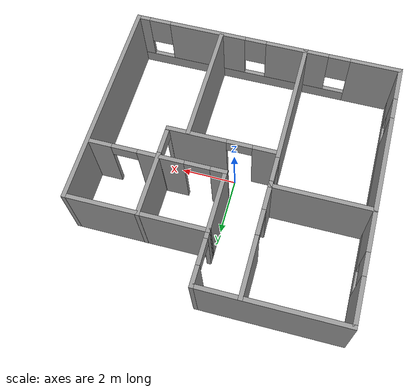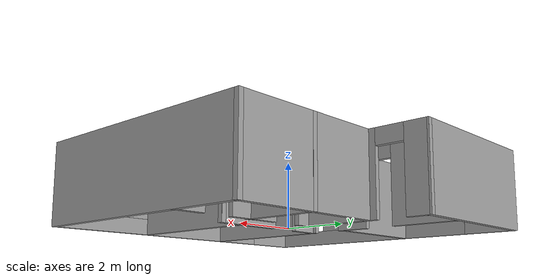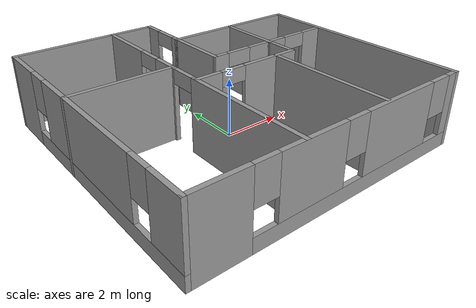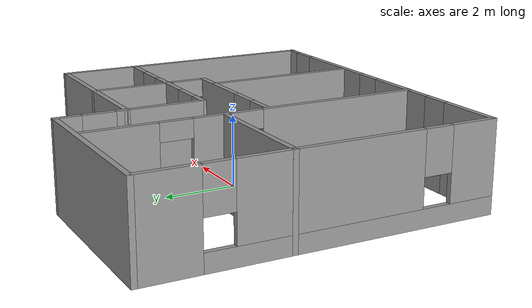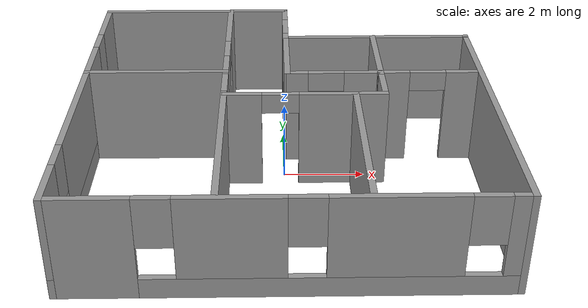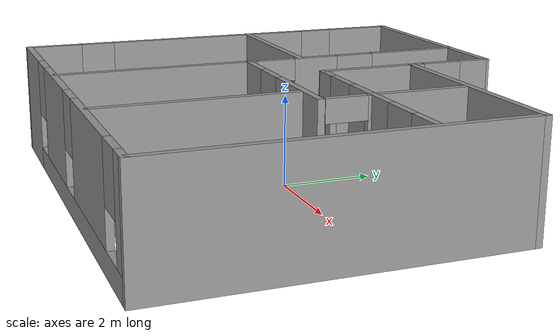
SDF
<?xml version='1.0'?>
<sdf version='1.7'>
  <model name='thelastone'>
    <pose>-0.001793 0.096026 0 0 -0 0</pose>
    <link name='Wall_0'>
      <pose>-4.92479 -0.050002 0 0 -0 -1.5708</pose>
      <visual name='Wall_0_Visual_0'>
        <pose>-3.96262 0 1.25 0 -0 0</pose>
        <geometry>
          <box>
            <size>1.57475 0.15 2.5</size>
          </box>
        </geometry>
        <material>
          <script>
            <uri>file://media/materials/scripts/gazebo.material</uri>
            <name>Gazebo/Grey</name>
          </script>
          <ambient>1 1 1 1</ambient>
        </material>
        <meta>
          <layer>0</layer>
        </meta>
      </visual>
      <collision name='Wall_0_Collision_0'>
        <geometry>
          <box>
            <size>1.57475 0.15 2.5</size>
          </box>
        </geometry>
        <pose>-3.96262 0 1.25 0 -0 0</pose>
      </collision>
      <visual name='Wall_0_Visual_1'>
        <pose>0.787376 0 0.25 0 -0 0</pose>
        <geometry>
          <box>
            <size>7.92525 0.15 0.5</size>
          </box>
        </geometry>
        <material>
          <script>
            <uri>file://media/materials/scripts/gazebo.material</uri>
            <name>Gazebo/Grey</name>
          </script>
          <ambient>1 1 1 1</ambient>
        </material>
        <meta>
          <layer>0</layer>
        </meta>
      </visual>
      <collision name='Wall_0_Collision_1'>
        <geometry>
          <box>
            <size>7.92525 0.15 0.5</size>
          </box>
        </geometry>
        <pose>0.787376 0 0.25 0 -0 0</pose>
      </collision>
      <visual name='Wall_0_Visual_2'>
        <pose>0.127644 0 1.5 0 -0 0</pose>
        <geometry>
          <box>
            <size>5.00578 0.15 2</size>
          </box>
        </geometry>
        <material>
          <script>
            <uri>file://media/materials/scripts/gazebo.material</uri>
            <name>Gazebo/Grey</name>
          </script>
          <ambient>1 1 1 1</ambient>
        </material>
        <meta>
          <layer>0</layer>
        </meta>
      </visual>
      <collision name='Wall_0_Collision_2'>
        <geometry>
          <box>
            <size>5.00578 0.15 2</size>
          </box>
        </geometry>
        <pose>0.127644 0 1.5 0 -0 0</pose>
      </collision>
      <visual name='Wall_0_Visual_3'>
        <pose>4.09027 0 1.5 0 -0 0</pose>
        <geometry>
          <box>
            <size>1.31947 0.15 2</size>
          </box>
        </geometry>
        <material>
          <script>
            <uri>file://media/materials/scripts/gazebo.material</uri>
            <name>Gazebo/Grey</name>
          </script>
          <ambient>1 1 1 1</ambient>
        </material>
        <meta>
          <layer>0</layer>
        </meta>
      </visual>
      <collision name='Wall_0_Collision_3'>
        <geometry>
          <box>
            <size>1.31947 0.15 2</size>
          </box>
        </geometry>
        <pose>4.09027 0 1.5 0 -0 0</pose>
      </collision>
      <visual name='Wall_0_Visual_4'>
        <pose>-2.77525 0 1.9 0 -0 0</pose>
        <geometry>
          <box>
            <size>0.8 0.15 1.2</size>
          </box>
        </geometry>
        <material>
          <script>
            <uri>file://media/materials/scripts/gazebo.material</uri>
            <name>Gazebo/Grey</name>
          </script>
          <ambient>1 1 1 1</ambient>
        </material>
        <meta>
          <layer>0</layer>
        </meta>
      </visual>
      <collision name='Wall_0_Collision_4'>
        <geometry>
          <box>
            <size>0.8 0.15 1.2</size>
          </box>
        </geometry>
        <pose>-2.77525 0 1.9 0 -0 0</pose>
      </collision>
      <visual name='Wall_0_Visual_5'>
        <pose>3.03053 0 1.9 0 -0 0</pose>
        <geometry>
          <box>
            <size>0.8 0.15 1.2</size>
          </box>
        </geometry>
        <material>
          <script>
            <uri>file://media/materials/scripts/gazebo.material</uri>
            <name>Gazebo/Grey</name>
          </script>
          <ambient>1 1 1 1</ambient>
        </material>
        <meta>
          <layer>0</layer>
        </meta>
      </visual>
      <collision name='Wall_0_Collision_5'>
        <geometry>
          <box>
            <size>0.8 0.15 1.2</size>
          </box>
        </geometry>
        <pose>3.03053 0 1.9 0 -0 0</pose>
      </collision>
    </link>
    <link name='Wall_1'>
      <pose>0.000206 -4.725 0 0 -0 0</pose>
      <visual name='Wall_1_Visual_0'>
        <pose>-4.05937 0 1.25 0 -0 0</pose>
        <geometry>
          <box>
            <size>1.88126 0.15 2.5</size>
          </box>
        </geometry>
        <material>
          <script>
            <uri>file://media/materials/scripts/gazebo.material</uri>
            <name>Gazebo/Grey</name>
          </script>
          <ambient>1 1 1 1</ambient>
        </material>
        <meta>
          <layer>0</layer>
        </meta>
      </visual>
      <collision name='Wall_1_Collision_0'>
        <geometry>
          <box>
            <size>1.88126 0.15 2.5</size>
          </box>
        </geometry>
        <pose>-4.05937 0 1.25 0 -0 0</pose>
      </collision>
      <visual name='Wall_1_Visual_1'>
        <pose>0.940628 0 0.25 0 -0 0</pose>
        <geometry>
          <box>
            <size>8.11874 0.15 0.5</size>
          </box>
        </geometry>
        <material>
          <script>
            <uri>file://media/materials/scripts/gazebo.material</uri>
            <name>Gazebo/Grey</name>
          </script>
          <ambient>1 1 1 1</ambient>
        </material>
        <meta>
          <layer>0</layer>
        </meta>
      </visual>
      <collision name='Wall_1_Collision_1'>
        <geometry>
          <box>
            <size>8.11874 0.15 0.5</size>
          </box>
        </geometry>
        <pose>0.940628 0 0.25 0 -0 0</pose>
      </collision>
      <visual name='Wall_1_Visual_2'>
        <pose>-1.15743 0 1.5 0 -0 0</pose>
        <geometry>
          <box>
            <size>2.32263 0.15 2</size>
          </box>
        </geometry>
        <material>
          <script>
            <uri>file://media/materials/scripts/gazebo.material</uri>
            <name>Gazebo/Grey</name>
          </script>
          <ambient>1 1 1 1</ambient>
        </material>
        <meta>
          <layer>0</layer>
        </meta>
      </visual>
      <collision name='Wall_1_Collision_2'>
        <geometry>
          <box>
            <size>2.32263 0.15 2</size>
          </box>
        </geometry>
        <pose>-1.15743 0 1.5 0 -0 0</pose>
      </collision>
      <visual name='Wall_1_Visual_3'>
        <pose>2.24277 0 1.5 0 -0 0</pose>
        <geometry>
          <box>
            <size>2.87777 0.15 2</size>
          </box>
        </geometry>
        <material>
          <script>
            <uri>file://media/materials/scripts/gazebo.material</uri>
            <name>Gazebo/Grey</name>
          </script>
          <ambient>1 1 1 1</ambient>
        </material>
        <meta>
          <layer>0</layer>
        </meta>
      </visual>
      <collision name='Wall_1_Collision_3'>
        <geometry>
          <box>
            <size>2.87777 0.15 2</size>
          </box>
        </geometry>
        <pose>2.24277 0 1.5 0 -0 0</pose>
      </collision>
      <visual name='Wall_1_Visual_4'>
        <pose>4.74083 0 1.5 0 -0 0</pose>
        <geometry>
          <box>
            <size>0.518345 0.15 2</size>
          </box>
        </geometry>
        <material>
          <script>
            <uri>file://media/materials/scripts/gazebo.material</uri>
            <name>Gazebo/Grey</name>
          </script>
          <ambient>1 1 1 1</ambient>
        </material>
        <meta>
          <layer>0</layer>
        </meta>
      </visual>
      <collision name='Wall_1_Collision_4'>
        <geometry>
          <box>
            <size>0.518345 0.15 2</size>
          </box>
        </geometry>
        <pose>4.74083 0 1.5 0 -0 0</pose>
      </collision>
      <visual name='Wall_1_Visual_5'>
        <pose>-2.71874 0 1.9 0 -0 0</pose>
        <geometry>
          <box>
            <size>0.8 0.15 1.2</size>
          </box>
        </geometry>
        <material>
          <script>
            <uri>file://media/materials/scripts/gazebo.material</uri>
            <name>Gazebo/Grey</name>
          </script>
          <ambient>1 1 1 1</ambient>
        </material>
        <meta>
          <layer>0</layer>
        </meta>
      </visual>
      <collision name='Wall_1_Collision_5'>
        <geometry>
          <box>
            <size>0.8 0.15 1.2</size>
          </box>
        </geometry>
        <pose>-2.71874 0 1.9 0 -0 0</pose>
      </collision>
      <visual name='Wall_1_Visual_6'>
        <pose>0.403889 0 1.9 0 -0 0</pose>
        <geometry>
          <box>
            <size>0.8 0.15 1.2</size>
          </box>
        </geometry>
        <material>
          <script>
            <uri>file://media/materials/scripts/gazebo.material</uri>
            <name>Gazebo/Grey</name>
          </script>
          <ambient>1 1 1 1</ambient>
        </material>
        <meta>
          <layer>0</layer>
        </meta>
      </visual>
      <collision name='Wall_1_Collision_6'>
        <geometry>
          <box>
            <size>0.8 0.15 1.2</size>
          </box>
        </geometry>
        <pose>0.403889 0 1.9 0 -0 0</pose>
      </collision>
      <visual name='Wall_1_Visual_7'>
        <pose>4.08165 0 1.9 0 -0 0</pose>
        <geometry>
          <box>
            <size>0.8 0.15 1.2</size>
          </box>
        </geometry>
        <material>
          <script>
            <uri>file://media/materials/scripts/gazebo.material</uri>
            <name>Gazebo/Grey</name>
          </script>
          <ambient>1 1 1 1</ambient>
        </material>
        <meta>
          <layer>0</layer>
        </meta>
      </visual>
      <collision name='Wall_1_Collision_7'>
        <geometry>
          <box>
            <size>0.8 0.15 1.2</size>
          </box>
        </geometry>
        <pose>4.08165 0 1.9 0 -0 0</pose>
      </collision>
    </link>
    <link name='Wall_11'>
      <collision name='Wall_11_Collision'>
        <geometry>
          <box>
            <size>2.27277 0.15 2.5</size>
          </box>
        </geometry>
        <pose>0 0 1.25 0 -0 0</pose>
      </collision>
      <visual name='Wall_11_Visual'>
        <pose>0 0 1.25 0 -0 0</pose>
        <geometry>
          <box>
            <size>2.27277 0.15 2.5</size>
          </box>
        </geometry>
        <material>
          <script>
            <uri>file://media/materials/scripts/gazebo.material</uri>
            <name>Gazebo/Grey</name>
          </script>
          <ambient>1 1 1 1</ambient>
        </material>
        <meta>
          <layer>0</layer>
        </meta>
      </visual>
      <pose>0.0795 1.81349 0 0 -0 1.57484</pose>
    </link>
    <link name='Wall_13'>
      <pose>1.24079 0.751974 0 0 -0 0</pose>
      <visual name='Wall_13_Visual_0'>
        <pose>-0.93552 0 1.25 0 -0 0</pose>
        <geometry>
          <box>
            <size>0.592959 0.15 2.5</size>
          </box>
        </geometry>
        <material>
          <script>
            <uri>file://media/materials/scripts/gazebo.material</uri>
            <name>Gazebo/Grey</name>
          </script>
          <ambient>1 1 1 1</ambient>
        </material>
        <meta>
          <layer>0</layer>
        </meta>
      </visual>
      <collision name='Wall_13_Collision_0'>
        <geometry>
          <box>
            <size>0.592959 0.15 2.5</size>
          </box>
        </geometry>
        <pose>-0.93552 0 1.25 0 -0 0</pose>
      </collision>
      <visual name='Wall_13_Visual_1'>
        <pose>0.74648 0 1.25 0 -0 0</pose>
        <geometry>
          <box>
            <size>0.971041 0.15 2.5</size>
          </box>
        </geometry>
        <material>
          <script>
            <uri>file://media/materials/scripts/gazebo.material</uri>
            <name>Gazebo/Grey</name>
          </script>
          <ambient>1 1 1 1</ambient>
        </material>
        <meta>
          <layer>0</layer>
        </meta>
      </visual>
      <collision name='Wall_13_Collision_1'>
        <geometry>
          <box>
            <size>0.971041 0.15 2.5</size>
          </box>
        </geometry>
        <pose>0.74648 0 1.25 0 -0 0</pose>
      </collision>
      <visual name='Wall_13_Visual_2'>
        <pose>-0.189041 0 2.25 0 -0 0</pose>
        <geometry>
          <box>
            <size>0.9 0.15 0.5</size>
          </box>
        </geometry>
        <material>
          <script>
            <uri>file://media/materials/scripts/gazebo.material</uri>
            <name>Gazebo/Grey</name>
          </script>
          <ambient>1 1 1 1</ambient>
        </material>
        <meta>
          <layer>0</layer>
        </meta>
      </visual>
      <collision name='Wall_13_Collision_2'>
        <geometry>
          <box>
            <size>0.9 0.15 0.5</size>
          </box>
        </geometry>
        <pose>-0.189041 0 2.25 0 -0 0</pose>
      </collision>
    </link>
    <link name='Wall_15'>
      <pose>2.41779 1.32997 0 0 -0 -1.5708</pose>
      <visual name='Wall_15_Visual_0'>
        <pose>-0.451387 0 1.25 0 -0 0</pose>
        <geometry>
          <box>
            <size>2.34723 0.15 2.5</size>
          </box>
        </geometry>
        <material>
          <script>
            <uri>file://media/materials/scripts/gazebo.material</uri>
            <name>Gazebo/Grey</name>
          </script>
          <ambient>1 1 1 1</ambient>
        </material>
        <meta>
          <layer>0</layer>
        </meta>
      </visual>
      <collision name='Wall_15_Collision_0'>
        <geometry>
          <box>
            <size>2.34723 0.15 2.5</size>
          </box>
        </geometry>
        <pose>-0.451387 0 1.25 0 -0 0</pose>
      </collision>
      <visual name='Wall_15_Visual_1'>
        <pose>1.62361 0 1.25 0 -0 0</pose>
        <geometry>
          <box>
            <size>0.002774 0.15 2.5</size>
          </box>
        </geometry>
        <material>
          <script>
            <uri>file://media/materials/scripts/gazebo.material</uri>
            <name>Gazebo/Grey</name>
          </script>
          <ambient>1 1 1 1</ambient>
        </material>
        <meta>
          <layer>0</layer>
        </meta>
      </visual>
      <collision name='Wall_15_Collision_1'>
        <geometry>
          <box>
            <size>0.002774 0.15 2.5</size>
          </box>
        </geometry>
        <pose>1.62361 0 1.25 0 -0 0</pose>
      </collision>
      <visual name='Wall_15_Visual_2'>
        <pose>1.17223 0 2.25 0 -0 0</pose>
        <geometry>
          <box>
            <size>0.9 0.15 0.5</size>
          </box>
        </geometry>
        <material>
          <script>
            <uri>file://media/materials/scripts/gazebo.material</uri>
            <name>Gazebo/Grey</name>
          </script>
          <ambient>1 1 1 1</ambient>
        </material>
        <meta>
          <layer>0</layer>
        </meta>
      </visual>
      <collision name='Wall_15_Collision_2'>
        <geometry>
          <box>
            <size>0.9 0.15 0.5</size>
          </box>
        </geometry>
        <pose>1.17223 0 2.25 0 -0 0</pose>
      </collision>
    </link>
    <link name='Wall_17'>
      <pose>0.492793 -0.376026 0 0 -0 0</pose>
      <visual name='Wall_17_Visual_0'>
        <pose>-1.52379 0 1.25 0 -0 0</pose>
        <geometry>
          <box>
            <size>0.952429 0.15 2.5</size>
          </box>
        </geometry>
        <material>
          <script>
            <uri>file://media/materials/scripts/gazebo.material</uri>
            <name>Gazebo/Grey</name>
          </script>
          <ambient>1 1 1 1</ambient>
        </material>
        <meta>
          <layer>0</layer>
        </meta>
      </visual>
      <collision name='Wall_17_Collision_0'>
        <geometry>
          <box>
            <size>0.952429 0.15 2.5</size>
          </box>
        </geometry>
        <pose>-1.52379 0 1.25 0 -0 0</pose>
      </collision>
      <visual name='Wall_17_Visual_1'>
        <pose>0.926214 0 1.25 0 -0 0</pose>
        <geometry>
          <box>
            <size>2.14757 0.15 2.5</size>
          </box>
        </geometry>
        <material>
          <script>
            <uri>file://media/materials/scripts/gazebo.material</uri>
            <name>Gazebo/Grey</name>
          </script>
          <ambient>1 1 1 1</ambient>
        </material>
        <meta>
          <layer>0</layer>
        </meta>
      </visual>
      <collision name='Wall_17_Collision_1'>
        <geometry>
          <box>
            <size>2.14757 0.15 2.5</size>
          </box>
        </geometry>
        <pose>0.926214 0 1.25 0 -0 0</pose>
      </collision>
      <visual name='Wall_17_Visual_2'>
        <pose>-0.597571 0 2.25 0 -0 0</pose>
        <geometry>
          <box>
            <size>0.9 0.15 0.5</size>
          </box>
        </geometry>
        <material>
          <script>
            <uri>file://media/materials/scripts/gazebo.material</uri>
            <name>Gazebo/Grey</name>
          </script>
          <ambient>1 1 1 1</ambient>
        </material>
        <meta>
          <layer>0</layer>
        </meta>
      </visual>
      <collision name='Wall_17_Collision_2'>
        <geometry>
          <box>
            <size>0.9 0.15 0.5</size>
          </box>
        </geometry>
        <pose>-0.597571 0 2.25 0 -0 0</pose>
      </collision>
    </link>
    <link name='Wall_19'>
      <collision name='Wall_19_Collision'>
        <geometry>
          <box>
            <size>4.39713 0.15 2.5</size>
          </box>
        </geometry>
        <pose>0 0 1.25 0 -0 0</pose>
      </collision>
      <visual name='Wall_19_Visual'>
        <pose>0 0 1.25 0 -0 0</pose>
        <geometry>
          <box>
            <size>4.39713 0.15 2.5</size>
          </box>
        </geometry>
        <material>
          <script>
            <uri>file://media/materials/scripts/gazebo.material</uri>
            <name>Gazebo/Grey</name>
          </script>
          <ambient>1 1 1 1</ambient>
        </material>
        <meta>
          <layer>0</layer>
        </meta>
      </visual>
      <pose>1.70579 -2.51153 0 0 -0 -1.5708</pose>
    </link>
    <link name='Wall_2'>
      <collision name='Wall_2_Collision'>
        <geometry>
          <box>
            <size>7.75 0.15 2.5</size>
          </box>
        </geometry>
        <pose>0 0 1.25 0 -0 0</pose>
      </collision>
      <visual name='Wall_2_Visual'>
        <pose>0 0 1.25 0 -0 0</pose>
        <geometry>
          <box>
            <size>7.75 0.15 2.5</size>
          </box>
        </geometry>
        <material>
          <script>
            <uri>file://media/materials/scripts/gazebo.material</uri>
            <name>Gazebo/Grey</name>
          </script>
          <ambient>1 1 1 1</ambient>
        </material>
        <meta>
          <layer>0</layer>
        </meta>
      </visual>
      <pose>4.92521 -0.925002 0 0 -0 1.5708</pose>
    </link>
    <link name='Wall_21'>
      <pose>3.66129 0.751974 0 0 -0 0</pose>
      <visual name='Wall_21_Visual_0'>
        <pose>-0.926837 0 1.25 0 -0 0</pose>
        <geometry>
          <box>
            <size>0.823326 0.15 2.5</size>
          </box>
        </geometry>
        <material>
          <script>
            <uri>file://media/materials/scripts/gazebo.material</uri>
            <name>Gazebo/Grey</name>
          </script>
          <ambient>1 1 1 1</ambient>
        </material>
        <meta>
          <layer>0</layer>
        </meta>
      </visual>
      <collision name='Wall_21_Collision_0'>
        <geometry>
          <box>
            <size>0.823326 0.15 2.5</size>
          </box>
        </geometry>
        <pose>-0.926837 0 1.25 0 -0 0</pose>
      </collision>
      <visual name='Wall_21_Visual_1'>
        <pose>0.861663 0 1.25 0 -0 0</pose>
        <geometry>
          <box>
            <size>0.953674 0.15 2.5</size>
          </box>
        </geometry>
        <material>
          <script>
            <uri>file://media/materials/scripts/gazebo.material</uri>
            <name>Gazebo/Grey</name>
          </script>
          <ambient>1 1 1 1</ambient>
        </material>
        <meta>
          <layer>0</layer>
        </meta>
      </visual>
      <collision name='Wall_21_Collision_1'>
        <geometry>
          <box>
            <size>0.953674 0.15 2.5</size>
          </box>
        </geometry>
        <pose>0.861663 0 1.25 0 -0 0</pose>
      </collision>
      <visual name='Wall_21_Visual_2'>
        <pose>-0.065174 0 2.25 0 -0 0</pose>
        <geometry>
          <box>
            <size>0.9 0.15 0.5</size>
          </box>
        </geometry>
        <material>
          <script>
            <uri>file://media/materials/scripts/gazebo.material</uri>
            <name>Gazebo/Grey</name>
          </script>
          <ambient>1 1 1 1</ambient>
        </material>
        <meta>
          <layer>0</layer>
        </meta>
      </visual>
      <collision name='Wall_21_Collision_2'>
        <geometry>
          <box>
            <size>0.9 0.15 0.5</size>
          </box>
        </geometry>
        <pose>-0.065174 0 2.25 0 -0 0</pose>
      </collision>
    </link>
    <link name='Wall_3'>
      <collision name='Wall_3_Collision'>
        <geometry>
          <box>
            <size>5 0.15 2.5</size>
          </box>
        </geometry>
        <pose>0 0 1.25 0 -0 0</pose>
      </collision>
      <visual name='Wall_3_Visual'>
        <pose>0 0 1.25 0 -0 0</pose>
        <geometry>
          <box>
            <size>5 0.15 2.5</size>
          </box>
        </geometry>
        <material>
          <script>
            <uri>file://media/materials/scripts/gazebo.material</uri>
            <name>Gazebo/Grey</name>
          </script>
          <ambient>1 1 1 1</ambient>
        </material>
        <meta>
          <layer>0</layer>
        </meta>
      </visual>
      <pose>2.50021 2.875 0 0 -0 3.14159</pose>
    </link>
    <link name='Wall_4'>
      <pose>0.075 3.79999 0 0 -0 1.57102</pose>
      <visual name='Wall_4_Visual_0'>
        <pose>-0.822889 0 1.25 0 -0 0</pose>
        <geometry>
          <box>
            <size>0.354221 0.15 2.5</size>
          </box>
        </geometry>
        <material>
          <script>
            <uri>file://media/materials/scripts/gazebo.material</uri>
            <name>Gazebo/Grey</name>
          </script>
          <ambient>1 1 1 1</ambient>
        </material>
        <meta>
          <layer>0</layer>
        </meta>
      </visual>
      <collision name='Wall_4_Collision_0'>
        <geometry>
          <box>
            <size>0.354221 0.15 2.5</size>
          </box>
        </geometry>
        <pose>-0.822889 0 1.25 0 -0 0</pose>
      </collision>
      <visual name='Wall_4_Visual_1'>
        <pose>0.627111 0 1.25 0 -0 0</pose>
        <geometry>
          <box>
            <size>0.745779 0.15 2.5</size>
          </box>
        </geometry>
        <material>
          <script>
            <uri>file://media/materials/scripts/gazebo.material</uri>
            <name>Gazebo/Grey</name>
          </script>
          <ambient>1 1 1 1</ambient>
        </material>
        <meta>
          <layer>0</layer>
        </meta>
      </visual>
      <collision name='Wall_4_Collision_1'>
        <geometry>
          <box>
            <size>0.745779 0.15 2.5</size>
          </box>
        </geometry>
        <pose>0.627111 0 1.25 0 -0 0</pose>
      </collision>
      <visual name='Wall_4_Visual_2'>
        <pose>-0.195779 0 2.25 0 -0 0</pose>
        <geometry>
          <box>
            <size>0.9 0.15 0.5</size>
          </box>
        </geometry>
        <material>
          <script>
            <uri>file://media/materials/scripts/gazebo.material</uri>
            <name>Gazebo/Grey</name>
          </script>
          <ambient>1 1 1 1</ambient>
        </material>
        <meta>
          <layer>0</layer>
        </meta>
      </visual>
      <collision name='Wall_4_Collision_2'>
        <geometry>
          <box>
            <size>0.9 0.15 0.5</size>
          </box>
        </geometry>
        <pose>-0.195779 0 2.25 0 -0 0</pose>
      </collision>
    </link>
    <link name='Wall_5'>
      <collision name='Wall_5_Collision'>
        <geometry>
          <box>
            <size>5.15 0.15 2.5</size>
          </box>
        </geometry>
        <pose>0 0 1.25 0 -0 0</pose>
      </collision>
      <visual name='Wall_5_Visual'>
        <pose>0 0 1.25 0 -0 0</pose>
        <geometry>
          <box>
            <size>5.15 0.15 2.5</size>
          </box>
        </geometry>
        <material>
          <script>
            <uri>file://media/materials/scripts/gazebo.material</uri>
            <name>Gazebo/Grey</name>
          </script>
          <ambient>1 1 1 1</ambient>
        </material>
        <meta>
          <layer>0</layer>
        </meta>
      </visual>
      <pose>-2.42521 4.72497 0 0 -0 3.14159</pose>
    </link>
    <link name='Wall_7'>
      <pose>-1.45921 -2.6e-05 0 0 -0 -1.5708</pose>
      <visual name='Wall_7_Visual_0'>
        <pose>-3.72156 0 1.25 0 -0 0</pose>
        <geometry>
          <box>
            <size>2.15658 0.15 2.5</size>
          </box>
        </geometry>
        <material>
          <script>
            <uri>file://media/materials/scripts/gazebo.material</uri>
            <name>Gazebo/Grey</name>
          </script>
          <ambient>1 1 1 1</ambient>
        </material>
        <meta>
          <layer>0</layer>
        </meta>
      </visual>
      <collision name='Wall_7_Collision_0'>
        <geometry>
          <box>
            <size>2.15658 0.15 2.5</size>
          </box>
        </geometry>
        <pose>-3.72156 0 1.25 0 -0 0</pose>
      </collision>
      <visual name='Wall_7_Visual_1'>
        <pose>-1.22178 0 1.25 0 -0 0</pose>
        <geometry>
          <box>
            <size>1.04297 0.15 2.5</size>
          </box>
        </geometry>
        <material>
          <script>
            <uri>file://media/materials/scripts/gazebo.material</uri>
            <name>Gazebo/Grey</name>
          </script>
          <ambient>1 1 1 1</ambient>
        </material>
        <meta>
          <layer>0</layer>
        </meta>
      </visual>
      <collision name='Wall_7_Collision_1'>
        <geometry>
          <box>
            <size>1.04297 0.15 2.5</size>
          </box>
        </geometry>
        <pose>-1.22178 0 1.25 0 -0 0</pose>
      </collision>
      <visual name='Wall_7_Visual_2'>
        <pose>2.49978 0 1.25 0 -0 0</pose>
        <geometry>
          <box>
            <size>4.60014 0.15 2.5</size>
          </box>
        </geometry>
        <material>
          <script>
            <uri>file://media/materials/scripts/gazebo.material</uri>
            <name>Gazebo/Grey</name>
          </script>
          <ambient>1 1 1 1</ambient>
        </material>
        <meta>
          <layer>0</layer>
        </meta>
      </visual>
      <collision name='Wall_7_Collision_2'>
        <geometry>
          <box>
            <size>4.60014 0.15 2.5</size>
          </box>
        </geometry>
        <pose>2.49978 0 1.25 0 -0 0</pose>
      </collision>
      <visual name='Wall_7_Visual_3'>
        <pose>-2.19327 0 2.25 0 -0 0</pose>
        <geometry>
          <box>
            <size>0.9 0.15 0.5</size>
          </box>
        </geometry>
        <material>
          <script>
            <uri>file://media/materials/scripts/gazebo.material</uri>
            <name>Gazebo/Grey</name>
          </script>
          <ambient>1 1 1 1</ambient>
        </material>
        <meta>
          <layer>0</layer>
        </meta>
      </visual>
      <collision name='Wall_7_Collision_3'>
        <geometry>
          <box>
            <size>0.9 0.15 0.5</size>
          </box>
        </geometry>
        <pose>-2.19327 0 2.25 0 -0 0</pose>
      </collision>
      <visual name='Wall_7_Visual_4'>
        <pose>-0.250296 0 2.25 0 -0 0</pose>
        <geometry>
          <box>
            <size>0.9 0.15 0.5</size>
          </box>
        </geometry>
        <material>
          <script>
            <uri>file://media/materials/scripts/gazebo.material</uri>
            <name>Gazebo/Grey</name>
          </script>
          <ambient>1 1 1 1</ambient>
        </material>
        <meta>
          <layer>0</layer>
        </meta>
      </visual>
      <collision name='Wall_7_Collision_4'>
        <geometry>
          <box>
            <size>0.9 0.15 0.5</size>
          </box>
        </geometry>
        <pose>-0.250296 0 2.25 0 -0 0</pose>
      </collision>
    </link>
    <link name='Wall_9'>
      <collision name='Wall_9_Collision'>
        <geometry>
          <box>
            <size>3.616 0.15 2.5</size>
          </box>
        </geometry>
        <pose>0 0 1.25 0 -0 0</pose>
      </collision>
      <visual name='Wall_9_Visual'>
        <pose>0 0 1.25 0 -0 0</pose>
        <geometry>
          <box>
            <size>3.616 0.15 2.5</size>
          </box>
        </geometry>
        <material>
          <script>
            <uri>file://media/materials/scripts/gazebo.material</uri>
            <name>Gazebo/Grey</name>
          </script>
          <ambient>1 1 1 1</ambient>
        </material>
        <meta>
          <layer>0</layer>
        </meta>
      </visual>
      <pose>-3.19221 0.858974 0 0 -0 0</pose>
    </link>
    <static>1</static>
  </model>
</sdf>
